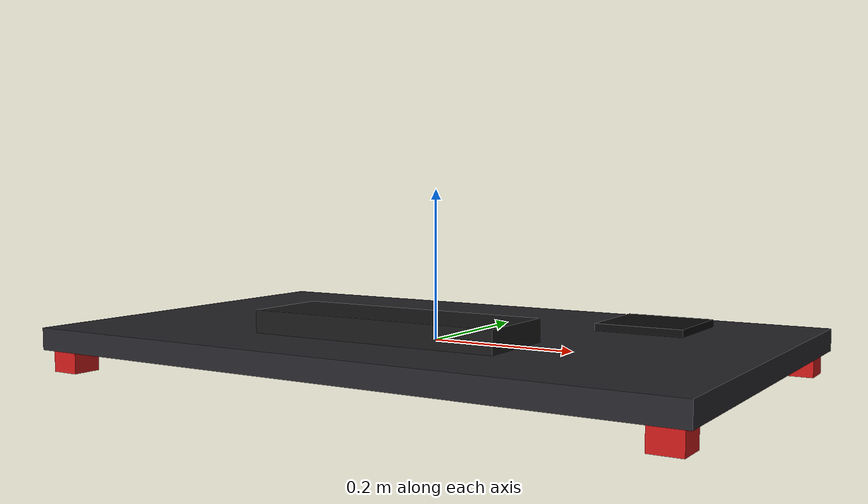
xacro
<?xml version="1.0"?>
<robot xmlns:xacro="http://www.ros.org/wiki/xacro" name="door_panel_test">
  <xacro:include filename="$(find ur30_cell_description)/urdf/door_panel.xacro"/>

  <link name="panel_root"/>

  <xacro:door_panel parent="panel_root" name="door_panel"
      panel_length="0.9" panel_width="0.55" panel_thickness="0.03">
    <origin xyz="0 0 0" rpy="0 0 0"/>
  </xacro:door_panel>

  <gazebo>
    <static>true</static>
  </gazebo>
</robot>

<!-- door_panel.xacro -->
<robot xmlns:xacro="http://www.ros.org/wiki/xacro">

  <!-- One corner fixture clamp, parented directly to the panel link so its
       offset is exact regardless of where the panel itself is mounted. -->
  <xacro:macro name="fixture_clamp" params="name cx cy panel_length panel_width panel_thickness">
    <link name="${name}_clamp_${cx}_${cy}">
      <visual>
        <geometry>
          <box size="0.04 0.04 0.03"/>
        </geometry>
        <material name="clamp_color">
          <color rgba="0.8 0.1 0.1 1.0"/>
        </material>
      </visual>
      <collision>
        <geometry>
          <box size="0.04 0.04 0.03"/>
        </geometry>
      </collision>
      <inertial>
        <mass value="0.05"/>
        <inertia ixx="0.0001" ixy="0" ixz="0" iyy="0.0001" iyz="0" izz="0.0001"/>
      </inertial>
    </link>
    <joint name="${name}_clamp_${cx}_${cy}_joint" type="fixed">
      <origin xyz="${cx*(panel_length/2 - 0.03)} ${cy*(panel_width/2 - 0.03)} ${-panel_thickness/2 - 0.015}" rpy="0 0 0"/>
      <parent link="${name}_link"/>
      <child link="${name}_clamp_${cx}_${cy}"/>
    </joint>
  </xacro:macro>

  <xacro:macro name="door_panel" params="parent
      panel_length:=0.9 panel_width:=0.55 panel_thickness:=0.03
      name:=door_panel *origin">

    <link name="${name}_link">
      <visual>
        <geometry>
          <box size="${panel_length} ${panel_width} ${panel_thickness}"/>
        </geometry>
        <material name="door_panel_color">
          <color rgba="0.15 0.15 0.17 1.0"/>
        </material>
      </visual>
      <collision>
        <geometry>
          <box size="${panel_length} ${panel_width} ${panel_thickness}"/>
        </geometry>
      </collision>
      <inertial>
        <mass value="4.0"/>
        <inertia ixx="0.05" ixy="0" ixz="0" iyy="0.05" iyz="0" izz="0.05"/>
      </inertial>
    </link>
    <joint name="${name}_mount_joint" type="fixed">
      <xacro:insert_block name="origin"/>
      <parent link="${parent}"/>
      <child link="${name}_link"/>
    </joint>

    <!-- armrest bulge -->
    <link name="${name}_armrest_link">
      <visual>
        <geometry>
          <box size="0.35 0.12 0.03"/>
        </geometry>
        <material name="armrest_color">
          <color rgba="0.1 0.1 0.1 1.0"/>
        </material>
      </visual>
      <collision>
        <geometry>
          <box size="0.35 0.12 0.03"/>
        </geometry>
      </collision>
      <inertial>
        <mass value="0.3"/>
        <inertia ixx="0.001" ixy="0" ixz="0" iyy="0.001" iyz="0" izz="0.001"/>
      </inertial>
    </link>
    <joint name="${name}_armrest_joint" type="fixed">
      <origin xyz="0 -0.1 ${panel_thickness/2 + 0.015}" rpy="0 0 0"/>
      <parent link="${name}_link"/>
      <child link="${name}_armrest_link"/>
    </joint>

    <!-- speaker grille -->
    <link name="${name}_speaker_link">
      <visual>
        <geometry>
          <box size="0.12 0.12 0.01"/>
        </geometry>
        <material name="speaker_color">
          <color rgba="0.05 0.05 0.05 1.0"/>
        </material>
      </visual>
      <collision>
        <geometry>
          <box size="0.12 0.12 0.01"/>
        </geometry>
      </collision>
      <inertial>
        <mass value="0.1"/>
        <inertia ixx="0.0005" ixy="0" ixz="0" iyy="0.0005" iyz="0" izz="0.0005"/>
      </inertial>
    </link>
    <joint name="${name}_speaker_joint" type="fixed">
      <origin xyz="0.25 0.15 ${panel_thickness/2 + 0.005}" rpy="0 0 0"/>
      <parent link="${name}_link"/>
      <child link="${name}_speaker_link"/>
    </joint>

    <!-- 4 corner fixture clamps, exactly at the panel's corners -->
    <xacro:fixture_clamp name="${name}" cx="1" cy="1" panel_length="${panel_length}" panel_width="${panel_width}" panel_thickness="${panel_thickness}"/>
    <xacro:fixture_clamp name="${name}" cx="1" cy="-1" panel_length="${panel_length}" panel_width="${panel_width}" panel_thickness="${panel_thickness}"/>
    <xacro:fixture_clamp name="${name}" cx="-1" cy="1" panel_length="${panel_length}" panel_width="${panel_width}" panel_thickness="${panel_thickness}"/>
    <xacro:fixture_clamp name="${name}" cx="-1" cy="-1" panel_length="${panel_length}" panel_width="${panel_width}" panel_thickness="${panel_thickness}"/>
  </xacro:macro>
</robot>
